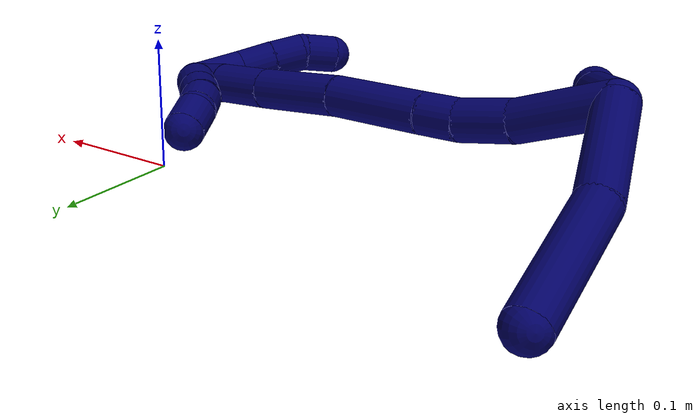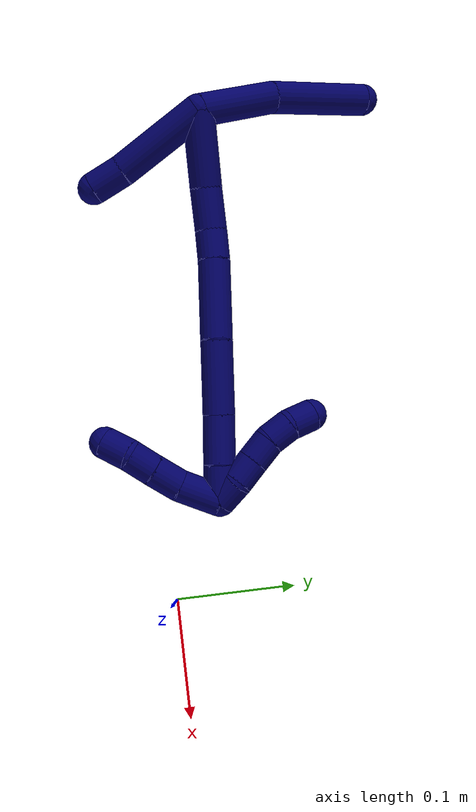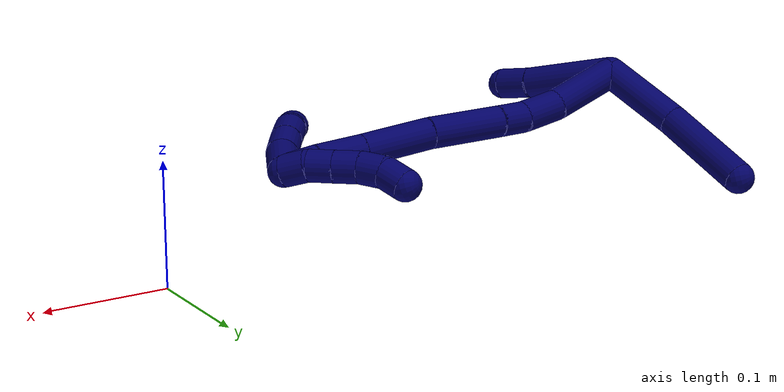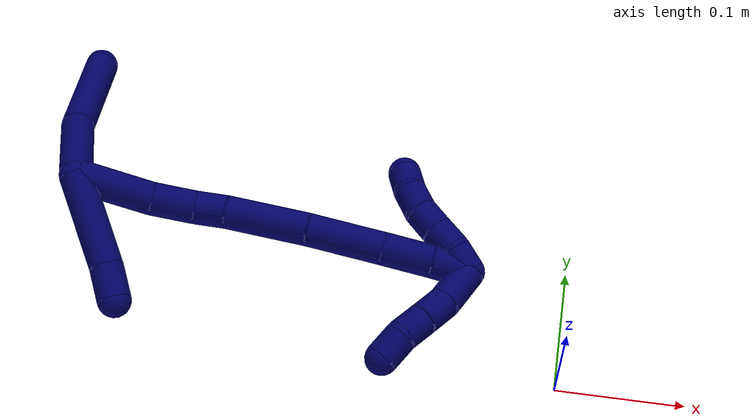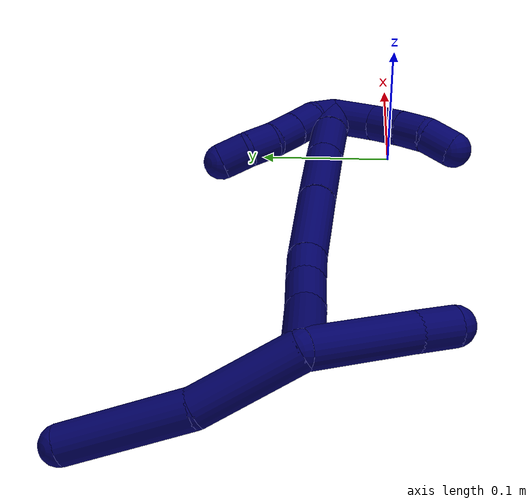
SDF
<sdf version="1.7">
 <world name="default">
  <model name="7">
   <static>0</static>
   <link name="7">
    <collision name="collision-cylinder-e_1_2_8">
     <pose>-0.003281 0.026097 0.021919 -0.872194 -0.095965 0.044749</pose>
     <geometry><cylinder><radius>0.0125</radius><length>0.068476</length></cylinder></geometry>
     <surface>
      <friction><ode><mu>1.16</mu><mu2>1.16</mu2><slip1>0</slip1><slip2>0</slip2></ode></friction>
      <contact><ode><kp>1e+06</kp><kd>1</kd><max_vel>0</max_vel><min_depth>0.001</min_depth></ode></contact>
     </surface>
    </collision>
    <visual name="visual-cylinder-e_1_2_8">
     <pose>-0.003281 0.026097 0.021919 -0.872194 -0.095965 0.044749</pose>
     <geometry><cylinder><radius>0.0125</radius><length>0.068476</length></cylinder></geometry>
     <material><ambient>0.003922 0 0.403922 1</ambient></material>
    </visual>
    <collision name="collision-cylinder-e_2_8_6">
     <pose>-0.001137 0.085142 0.067215 -0.953722 0.133477 -0.069033</pose>
     <geometry><cylinder><radius>0.0125</radius><length>0.081524</length></cylinder></geometry>
     <surface>
      <friction><ode><mu>1.16</mu><mu2>1.16</mu2><slip1>0</slip1><slip2>0</slip2></ode></friction>
      <contact><ode><kp>1e+06</kp><kd>1</kd><max_vel>0</max_vel><min_depth>0.001</min_depth></ode></contact>
     </surface>
    </collision>
    <visual name="visual-cylinder-e_2_8_6">
     <pose>-0.001137 0.085142 0.067215 -0.953722 0.133477 -0.069033</pose>
     <geometry><cylinder><radius>0.0125</radius><length>0.081524</length></cylinder></geometry>
     <material><ambient>0.003922 0 0.403922 1</ambient></material>
    </visual>
    <collision name="collision-cylinder-e_1_2_9">
     <pose>-0.004538 -0.006917 -0.03585 2.95099 -0.123662 -1.14945</pose>
     <geometry><cylinder><radius>0.0125</radius><length>0.073584</length></cylinder></geometry>
     <surface>
      <friction><ode><mu>1.16</mu><mu2>1.16</mu2><slip1>0</slip1><slip2>0</slip2></ode></friction>
      <contact><ode><kp>1e+06</kp><kd>1</kd><max_vel>0</max_vel><min_depth>0.001</min_depth></ode></contact>
     </surface>
    </collision>
    <visual name="visual-cylinder-e_1_2_9">
     <pose>-0.004538 -0.006917 -0.03585 2.95099 -0.123662 -1.14945</pose>
     <geometry><cylinder><radius>0.0125</radius><length>0.073584</length></cylinder></geometry>
     <material><ambient>0.003922 0 0.403922 1</ambient></material>
    </visual>
    <collision name="collision-cylinder-e_2_9_5">
     <pose>-0.011171 -0.017645 -0.084171 2.84505 -0.159259 -0.981316</pose>
     <geometry><cylinder><radius>0.0125</radius><length>0.026416</length></cylinder></geometry>
     <surface>
      <friction><ode><mu>1.16</mu><mu2>1.16</mu2><slip1>0</slip1><slip2>0</slip2></ode></friction>
      <contact><ode><kp>1e+06</kp><kd>1</kd><max_vel>0</max_vel><min_depth>0.001</min_depth></ode></contact>
     </surface>
    </collision>
    <visual name="visual-cylinder-e_2_9_5">
     <pose>-0.011171 -0.017645 -0.084171 2.84505 -0.159259 -0.981316</pose>
     <geometry><cylinder><radius>0.0125</radius><length>0.026416</length></cylinder></geometry>
     <material><ambient>0.003922 0 0.403922 1</ambient></material>
    </visual>
    <collision name="collision-cylinder-e_1_2_10">
     <pose>0.0136 0.015532 -0.020319 -2.48893 0.488732 -1.26997</pose>
     <geometry><cylinder><radius>0.0125</radius><length>0.057934</length></cylinder></geometry>
     <surface>
      <friction><ode><mu>1.16</mu><mu2>1.16</mu2><slip1>0</slip1><slip2>0</slip2></ode></friction>
      <contact><ode><kp>1e+06</kp><kd>1</kd><max_vel>0</max_vel><min_depth>0.001</min_depth></ode></contact>
     </surface>
    </collision>
    <visual name="visual-cylinder-e_1_2_10">
     <pose>0.0136 0.015532 -0.020319 -2.48893 0.488732 -1.26997</pose>
     <geometry><cylinder><radius>0.0125</radius><length>0.057934</length></cylinder></geometry>
     <material><ambient>0.003922 0 0.403922 1</ambient></material>
    </visual>
    <collision name="collision-cylinder-e_2_10_11">
     <pose>0.037394 0.038173 -0.051715 -2.57105 0.658979 -1.72379</pose>
     <geometry><cylinder><radius>0.0125</radius><length>0.033296</length></cylinder></geometry>
     <surface>
      <friction><ode><mu>1.16</mu><mu2>1.16</mu2><slip1>0</slip1><slip2>0</slip2></ode></friction>
      <contact><ode><kp>1e+06</kp><kd>1</kd><max_vel>0</max_vel><min_depth>0.001</min_depth></ode></contact>
     </surface>
    </collision>
    <visual name="visual-cylinder-e_2_10_11">
     <pose>0.037394 0.038173 -0.051715 -2.57105 0.658979 -1.72379</pose>
     <geometry><cylinder><radius>0.0125</radius><length>0.033296</length></cylinder></geometry>
     <material><ambient>0.003922 0 0.403922 1</ambient></material>
    </visual>
    <collision name="collision-cylinder-e_3_11_12">
     <pose>0.05583 0.048847 -0.070341 -2.70032 0.779041 -2.14146</pose>
     <geometry><cylinder><radius>0.0125</radius><length>0.023462</length></cylinder></geometry>
     <surface>
      <friction><ode><mu>1.16</mu><mu2>1.16</mu2><slip1>0</slip1><slip2>0</slip2></ode></friction>
      <contact><ode><kp>1e+06</kp><kd>1</kd><max_vel>0</max_vel><min_depth>0.001</min_depth></ode></contact>
     </surface>
    </collision>
    <visual name="visual-cylinder-e_3_11_12">
     <pose>0.05583 0.048847 -0.070341 -2.70032 0.779041 -2.14146</pose>
     <geometry><cylinder><radius>0.0125</radius><length>0.023462</length></cylinder></geometry>
     <material><ambient>0.003922 0 0.403922 1</ambient></material>
    </visual>
    <collision name="collision-cylinder-e_4_12_13">
     <pose>0.084762 0.06091 -0.099412 -2.76555 0.729574 -2.2171</pose>
     <geometry><cylinder><radius>0.0125</radius><length>0.062081</length></cylinder></geometry>
     <surface>
      <friction><ode><mu>1.16</mu><mu2>1.16</mu2><slip1>0</slip1><slip2>0</slip2></ode></friction>
      <contact><ode><kp>1e+06</kp><kd>1</kd><max_vel>0</max_vel><min_depth>0.001</min_depth></ode></contact>
     </surface>
    </collision>
    <visual name="visual-cylinder-e_4_12_13">
     <pose>0.084762 0.06091 -0.099412 -2.76555 0.729574 -2.2171</pose>
     <geometry><cylinder><radius>0.0125</radius><length>0.062081</length></cylinder></geometry>
     <material><ambient>0.003922 0 0.403922 1</ambient></material>
    </visual>
    <collision name="collision-cylinder-e_5_13_14">
     <pose>0.123192 0.078918 -0.141417 -2.70695 0.665846 -2.00501</pose>
     <geometry><cylinder><radius>0.0125</radius><length>0.057434</length></cylinder></geometry>
     <surface>
      <friction><ode><mu>1.16</mu><mu2>1.16</mu2><slip1>0</slip1><slip2>0</slip2></ode></friction>
      <contact><ode><kp>1e+06</kp><kd>1</kd><max_vel>0</max_vel><min_depth>0.001</min_depth></ode></contact>
     </surface>
    </collision>
    <visual name="visual-cylinder-e_5_13_14">
     <pose>0.123192 0.078918 -0.141417 -2.70695 0.665846 -2.00501</pose>
     <geometry><cylinder><radius>0.0125</radius><length>0.057434</length></cylinder></geometry>
     <material><ambient>0.003922 0 0.403922 1</ambient></material>
    </visual>
    <collision name="collision-cylinder-e_6_14_15">
     <pose>0.152695 0.094252 -0.175542 -2.73806 0.67051 -2.07984</pose>
     <geometry><cylinder><radius>0.0125</radius><length>0.037863</length></cylinder></geometry>
     <surface>
      <friction><ode><mu>1.16</mu><mu2>1.16</mu2><slip1>0</slip1><slip2>0</slip2></ode></friction>
      <contact><ode><kp>1e+06</kp><kd>1</kd><max_vel>0</max_vel><min_depth>0.001</min_depth></ode></contact>
     </surface>
    </collision>
    <visual name="visual-cylinder-e_6_14_15">
     <pose>0.152695 0.094252 -0.175542 -2.73806 0.67051 -2.07984</pose>
     <geometry><cylinder><radius>0.0125</radius><length>0.037863</length></cylinder></geometry>
     <material><ambient>0.003922 0 0.403922 1</ambient></material>
    </visual>
    <collision name="collision-cylinder-e_7_15_1">
     <pose>0.172538 0.105095 -0.199409 -2.68525 0.616966 -1.88209</pose>
     <geometry><cylinder><radius>0.0125</radius><length>0.027929</length></cylinder></geometry>
     <surface>
      <friction><ode><mu>1.16</mu><mu2>1.16</mu2><slip1>0</slip1><slip2>0</slip2></ode></friction>
      <contact><ode><kp>1e+06</kp><kd>1</kd><max_vel>0</max_vel><min_depth>0.001</min_depth></ode></contact>
     </surface>
    </collision>
    <visual name="visual-cylinder-e_7_15_1">
     <pose>0.172538 0.105095 -0.199409 -2.68525 0.616966 -1.88209</pose>
     <geometry><cylinder><radius>0.0125</radius><length>0.027929</length></cylinder></geometry>
     <material><ambient>0.003922 0 0.403922 1</ambient></material>
    </visual>
    <collision name="collision-cylinder-e_1_1_16">
     <pose>0.170936 0.097646 -0.214974 1.97547 -0.619892 -0.9041</pose>
     <geometry><cylinder><radius>0.0125</radius><length>0.03333</length></cylinder></geometry>
     <surface>
      <friction><ode><mu>1.16</mu><mu2>1.16</mu2><slip1>0</slip1><slip2>0</slip2></ode></friction>
      <contact><ode><kp>1e+06</kp><kd>1</kd><max_vel>0</max_vel><min_depth>0.001</min_depth></ode></contact>
     </surface>
    </collision>
    <visual name="visual-cylinder-e_1_1_16">
     <pose>0.170936 0.097646 -0.214974 1.97547 -0.619892 -0.9041</pose>
     <geometry><cylinder><radius>0.0125</radius><length>0.03333</length></cylinder></geometry>
     <material><ambient>0.003922 0 0.403922 1</ambient></material>
    </visual>
    <collision name="collision-cylinder-e_2_16_17">
     <pose>0.154171 0.075889 -0.221853 1.73503 -0.645031 -0.750865</pose>
     <geometry><cylinder><radius>0.0125</radius><length>0.023564</length></cylinder></geometry>
     <surface>
      <friction><ode><mu>1.16</mu><mu2>1.16</mu2><slip1>0</slip1><slip2>0</slip2></ode></friction>
      <contact><ode><kp>1e+06</kp><kd>1</kd><max_vel>0</max_vel><min_depth>0.001</min_depth></ode></contact>
     </surface>
    </collision>
    <visual name="visual-cylinder-e_2_16_17">
     <pose>0.154171 0.075889 -0.221853 1.73503 -0.645031 -0.750865</pose>
     <geometry><cylinder><radius>0.0125</radius><length>0.023564</length></cylinder></geometry>
     <material><ambient>0.003922 0 0.403922 1</ambient></material>
    </visual>
    <collision name="collision-cylinder-e_3_17_18">
     <pose>0.140294 0.058521 -0.224664 1.72687 -0.693117 -0.799333</pose>
     <geometry><cylinder><radius>0.0125</radius><length>0.021267</length></cylinder></geometry>
     <surface>
      <friction><ode><mu>1.16</mu><mu2>1.16</mu2><slip1>0</slip1><slip2>0</slip2></ode></friction>
      <contact><ode><kp>1e+06</kp><kd>1</kd><max_vel>0</max_vel><min_depth>0.001</min_depth></ode></contact>
     </surface>
    </collision>
    <visual name="visual-cylinder-e_3_17_18">
     <pose>0.140294 0.058521 -0.224664 1.72687 -0.693117 -0.799333</pose>
     <geometry><cylinder><radius>0.0125</radius><length>0.021267</length></cylinder></geometry>
     <material><ambient>0.003922 0 0.403922 1</ambient></material>
    </visual>
    <collision name="collision-cylinder-e_4_18_4">
     <pose>0.124699 0.044835 -0.229154 2.09193 -0.937305 -1.43698</pose>
     <geometry><cylinder><radius>0.0125</radius><length>0.02184</length></cylinder></geometry>
     <surface>
      <friction><ode><mu>1.16</mu><mu2>1.16</mu2><slip1>0</slip1><slip2>0</slip2></ode></friction>
      <contact><ode><kp>1e+06</kp><kd>1</kd><max_vel>0</max_vel><min_depth>0.001</min_depth></ode></contact>
     </surface>
    </collision>
    <visual name="visual-cylinder-e_4_18_4">
     <pose>0.124699 0.044835 -0.229154 2.09193 -0.937305 -1.43698</pose>
     <geometry><cylinder><radius>0.0125</radius><length>0.02184</length></cylinder></geometry>
     <material><ambient>0.003922 0 0.403922 1</ambient></material>
    </visual>
    <collision name="collision-cylinder-e_1_1_19">
     <pose>0.180486 0.110249 -0.199635 -0.013472 -0.013185 8.9e-05</pose>
     <geometry><cylinder><radius>0.0125</radius><length>0.02</length></cylinder></geometry>
     <surface>
      <friction><ode><mu>1.16</mu><mu2>1.16</mu2><slip1>0</slip1><slip2>0</slip2></ode></friction>
      <contact><ode><kp>1e+06</kp><kd>1</kd><max_vel>0</max_vel><min_depth>0.001</min_depth></ode></contact>
     </surface>
    </collision>
    <visual name="visual-cylinder-e_1_1_19">
     <pose>0.180486 0.110249 -0.199635 -0.013472 -0.013185 8.9e-05</pose>
     <geometry><cylinder><radius>0.0125</radius><length>0.02</length></cylinder></geometry>
     <material><ambient>0.003922 0 0.403922 1</ambient></material>
    </visual>
    <collision name="collision-cylinder-e_2_19_20">
     <pose>0.177916 0.112188 -0.180108 -0.187093 -0.246336 0.023228</pose>
     <geometry><cylinder><radius>0.0125</radius><length>0.02</length></cylinder></geometry>
     <surface>
      <friction><ode><mu>1.16</mu><mu2>1.16</mu2><slip1>0</slip1><slip2>0</slip2></ode></friction>
      <contact><ode><kp>1e+06</kp><kd>1</kd><max_vel>0</max_vel><min_depth>0.001</min_depth></ode></contact>
     </surface>
    </collision>
    <visual name="visual-cylinder-e_2_19_20">
     <pose>0.177916 0.112188 -0.180108 -0.187093 -0.246336 0.023228</pose>
     <geometry><cylinder><radius>0.0125</radius><length>0.02</length></cylinder></geometry>
     <material><ambient>0.003922 0 0.403922 1</ambient></material>
    </visual>
    <collision name="collision-cylinder-e_3_20_21">
     <pose>0.17324 0.11578 -0.160998 -0.184528 -0.225605 0.020963</pose>
     <geometry><cylinder><radius>0.0125</radius><length>0.02</length></cylinder></geometry>
     <surface>
      <friction><ode><mu>1.16</mu><mu2>1.16</mu2><slip1>0</slip1><slip2>0</slip2></ode></friction>
      <contact><ode><kp>1e+06</kp><kd>1</kd><max_vel>0</max_vel><min_depth>0.001</min_depth></ode></contact>
     </surface>
    </collision>
    <visual name="visual-cylinder-e_3_20_21">
     <pose>0.17324 0.11578 -0.160998 -0.184528 -0.225605 0.020963</pose>
     <geometry><cylinder><radius>0.0125</radius><length>0.02</length></cylinder></geometry>
     <material><ambient>0.003922 0 0.403922 1</ambient></material>
    </visual>
    <collision name="collision-cylinder-e_4_21_22">
     <pose>0.170193 0.121484 -0.14225 -0.403665 -0.081101 0.016603</pose>
     <geometry><cylinder><radius>0.0125</radius><length>0.02</length></cylinder></geometry>
     <surface>
      <friction><ode><mu>1.16</mu><mu2>1.16</mu2><slip1>0</slip1><slip2>0</slip2></ode></friction>
      <contact><ode><kp>1e+06</kp><kd>1</kd><max_vel>0</max_vel><min_depth>0.001</min_depth></ode></contact>
     </surface>
    </collision>
    <visual name="visual-cylinder-e_4_21_22">
     <pose>0.170193 0.121484 -0.14225 -0.403665 -0.081101 0.016603</pose>
     <geometry><cylinder><radius>0.0125</radius><length>0.02</length></cylinder></geometry>
     <material><ambient>0.003922 0 0.403922 1</ambient></material>
    </visual>
    <collision name="collision-cylinder-e_5_22_3">
     <pose>0.168773 0.132061 -0.125652 -0.730829 -0.060999 0.023344</pose>
     <geometry><cylinder><radius>0.0125</radius><length>0.02</length></cylinder></geometry>
     <surface>
      <friction><ode><mu>1.16</mu><mu2>1.16</mu2><slip1>0</slip1><slip2>0</slip2></ode></friction>
      <contact><ode><kp>1e+06</kp><kd>1</kd><max_vel>0</max_vel><min_depth>0.001</min_depth></ode></contact>
     </surface>
    </collision>
    <visual name="visual-cylinder-e_5_22_3">
     <pose>0.168773 0.132061 -0.125652 -0.730829 -0.060999 0.023344</pose>
     <geometry><cylinder><radius>0.0125</radius><length>0.02</length></cylinder></geometry>
     <material><ambient>0.003922 0 0.403922 1</ambient></material>
    </visual>
    <collision name="collision-sphere-3">
     <pose>0.168164 0.138723 -0.11822 0 -0 0</pose>
     <geometry><sphere><radius>0.0125</radius></sphere></geometry>
     <surface>
      <friction><ode><mu>1.16</mu><mu2>1.16</mu2><slip1>0</slip1><slip2>0</slip2></ode></friction>
      <contact><ode><kp>1e+06</kp><kd>1</kd><max_vel>0</max_vel><min_depth>0.001</min_depth></ode></contact>
     </surface>
    </collision>
    <visual name="visual-sphere-3">
     <pose>0.168164 0.138723 -0.11822 0 -0 0</pose>
     <geometry><sphere><radius>0.0125</radius></sphere></geometry>
     <material><ambient>0.003922 0 0.403922 1</ambient></material>
    </visual>
    <collision name="collision-sphere-22">
     <pose>0.169383 0.125399 -0.133084 0 -0 0</pose>
     <geometry><sphere><radius>0.0125</radius></sphere></geometry>
     <surface>
      <friction><ode><mu>1.16</mu><mu2>1.16</mu2><slip1>0</slip1><slip2>0</slip2></ode></friction>
      <contact><ode><kp>1e+06</kp><kd>1</kd><max_vel>0</max_vel><min_depth>0.001</min_depth></ode></contact>
     </surface>
    </collision>
    <visual name="visual-sphere-22">
     <pose>0.169383 0.125399 -0.133084 0 -0 0</pose>
     <geometry><sphere><radius>0.0125</radius></sphere></geometry>
     <material><ambient>0.003922 0 0.403922 1</ambient></material>
    </visual>
    <collision name="collision-sphere-21">
     <pose>0.171003 0.117569 -0.151417 0 -0 0</pose>
     <geometry><sphere><radius>0.0125</radius></sphere></geometry>
     <surface>
      <friction><ode><mu>1.16</mu><mu2>1.16</mu2><slip1>0</slip1><slip2>0</slip2></ode></friction>
      <contact><ode><kp>1e+06</kp><kd>1</kd><max_vel>0</max_vel><min_depth>0.001</min_depth></ode></contact>
     </surface>
    </collision>
    <visual name="visual-sphere-21">
     <pose>0.171003 0.117569 -0.151417 0 -0 0</pose>
     <geometry><sphere><radius>0.0125</radius></sphere></geometry>
     <material><ambient>0.003922 0 0.403922 1</ambient></material>
    </visual>
    <collision name="collision-sphere-20">
     <pose>0.175477 0.113992 -0.170579 0 -0 0</pose>
     <geometry><sphere><radius>0.0125</radius></sphere></geometry>
     <surface>
      <friction><ode><mu>1.16</mu><mu2>1.16</mu2><slip1>0</slip1><slip2>0</slip2></ode></friction>
      <contact><ode><kp>1e+06</kp><kd>1</kd><max_vel>0</max_vel><min_depth>0.001</min_depth></ode></contact>
     </surface>
    </collision>
    <visual name="visual-sphere-20">
     <pose>0.175477 0.113992 -0.170579 0 -0 0</pose>
     <geometry><sphere><radius>0.0125</radius></sphere></geometry>
     <material><ambient>0.003922 0 0.403922 1</ambient></material>
    </visual>
    <collision name="collision-sphere-19">
     <pose>0.180354 0.110384 -0.189637 0 -0 0</pose>
     <geometry><sphere><radius>0.0125</radius></sphere></geometry>
     <surface>
      <friction><ode><mu>1.16</mu><mu2>1.16</mu2><slip1>0</slip1><slip2>0</slip2></ode></friction>
      <contact><ode><kp>1e+06</kp><kd>1</kd><max_vel>0</max_vel><min_depth>0.001</min_depth></ode></contact>
     </surface>
    </collision>
    <visual name="visual-sphere-19">
     <pose>0.180354 0.110384 -0.189637 0 -0 0</pose>
     <geometry><sphere><radius>0.0125</radius></sphere></geometry>
     <material><ambient>0.003922 0 0.403922 1</ambient></material>
    </visual>
    <collision name="collision-sphere-10">
     <pose>0.0272 0.031065 -0.040638 0 -0 0</pose>
     <geometry><sphere><radius>0.0125</radius></sphere></geometry>
     <surface>
      <friction><ode><mu>1.16</mu><mu2>1.16</mu2><slip1>0</slip1><slip2>0</slip2></ode></friction>
      <contact><ode><kp>1e+06</kp><kd>1</kd><max_vel>0</max_vel><min_depth>0.001</min_depth></ode></contact>
     </surface>
    </collision>
    <visual name="visual-sphere-10">
     <pose>0.0272 0.031065 -0.040638 0 -0 0</pose>
     <geometry><sphere><radius>0.0125</radius></sphere></geometry>
     <material><ambient>0.003922 0 0.403922 1</ambient></material>
    </visual>
    <collision name="collision-sphere-5">
     <pose>-0.013266 -0.021456 -0.096643 0 -0 0</pose>
     <geometry><sphere><radius>0.0125</radius></sphere></geometry>
     <surface>
      <friction><ode><mu>1.16</mu><mu2>1.16</mu2><slip1>0</slip1><slip2>0</slip2></ode></friction>
      <contact><ode><kp>1e+06</kp><kd>1</kd><max_vel>0</max_vel><min_depth>0.001</min_depth></ode></contact>
     </surface>
    </collision>
    <visual name="visual-sphere-5">
     <pose>-0.013266 -0.021456 -0.096643 0 -0 0</pose>
     <geometry><sphere><radius>0.0125</radius></sphere></geometry>
     <material><ambient>0.003922 0 0.403922 1</ambient></material>
    </visual>
    <collision name="collision-sphere-6">
     <pose>0.004288 0.118091 0.090592 0 -0 0</pose>
     <geometry><sphere><radius>0.0125</radius></sphere></geometry>
     <surface>
      <friction><ode><mu>1.16</mu><mu2>1.16</mu2><slip1>0</slip1><slip2>0</slip2></ode></friction>
      <contact><ode><kp>1e+06</kp><kd>1</kd><max_vel>0</max_vel><min_depth>0.001</min_depth></ode></contact>
     </surface>
    </collision>
    <visual name="visual-sphere-6">
     <pose>0.004288 0.118091 0.090592 0 -0 0</pose>
     <geometry><sphere><radius>0.0125</radius></sphere></geometry>
     <material><ambient>0.003922 0 0.403922 1</ambient></material>
    </visual>
    <collision name="collision-sphere-9">
     <pose>-0.009076 -0.013834 -0.0717 0 -0 0</pose>
     <geometry><sphere><radius>0.0125</radius></sphere></geometry>
     <surface>
      <friction><ode><mu>1.16</mu><mu2>1.16</mu2><slip1>0</slip1><slip2>0</slip2></ode></friction>
      <contact><ode><kp>1e+06</kp><kd>1</kd><max_vel>0</max_vel><min_depth>0.001</min_depth></ode></contact>
     </surface>
    </collision>
    <visual name="visual-sphere-9">
     <pose>-0.009076 -0.013834 -0.0717 0 -0 0</pose>
     <geometry><sphere><radius>0.0125</radius></sphere></geometry>
     <material><ambient>0.003922 0 0.403922 1</ambient></material>
    </visual>
    <collision name="collision-sphere-2">
     <geometry><sphere><radius>0.0125</radius></sphere></geometry>
     <surface>
      <friction><ode><mu>1.16</mu><mu2>1.16</mu2><slip1>0</slip1><slip2>0</slip2></ode></friction>
      <contact><ode><kp>1e+06</kp><kd>1</kd><max_vel>0</max_vel><min_depth>0.001</min_depth></ode></contact>
     </surface>
    </collision>
    <visual name="visual-sphere-2">
     <geometry><sphere><radius>0.0125</radius></sphere></geometry>
     <material><ambient>0.003922 0 0.403922 1</ambient></material>
    </visual>
    <collision name="collision-sphere-8">
     <pose>-0.006561 0.052193 0.043837 0 -0 0</pose>
     <geometry><sphere><radius>0.0125</radius></sphere></geometry>
     <surface>
      <friction><ode><mu>1.16</mu><mu2>1.16</mu2><slip1>0</slip1><slip2>0</slip2></ode></friction>
      <contact><ode><kp>1e+06</kp><kd>1</kd><max_vel>0</max_vel><min_depth>0.001</min_depth></ode></contact>
     </surface>
    </collision>
    <visual name="visual-sphere-8">
     <pose>-0.006561 0.052193 0.043837 0 -0 0</pose>
     <geometry><sphere><radius>0.0125</radius></sphere></geometry>
     <material><ambient>0.003922 0 0.403922 1</ambient></material>
    </visual>
    <collision name="collision-sphere-11">
     <pose>0.047588 0.045282 -0.062793 0 -0 0</pose>
     <geometry><sphere><radius>0.0125</radius></sphere></geometry>
     <surface>
      <friction><ode><mu>1.16</mu><mu2>1.16</mu2><slip1>0</slip1><slip2>0</slip2></ode></friction>
      <contact><ode><kp>1e+06</kp><kd>1</kd><max_vel>0</max_vel><min_depth>0.001</min_depth></ode></contact>
     </surface>
    </collision>
    <visual name="visual-sphere-11">
     <pose>0.047588 0.045282 -0.062793 0 -0 0</pose>
     <geometry><sphere><radius>0.0125</radius></sphere></geometry>
     <material><ambient>0.003922 0 0.403922 1</ambient></material>
    </visual>
    <collision name="collision-sphere-12">
     <pose>0.064072 0.052413 -0.077889 0 -0 0</pose>
     <geometry><sphere><radius>0.0125</radius></sphere></geometry>
     <surface>
      <friction><ode><mu>1.16</mu><mu2>1.16</mu2><slip1>0</slip1><slip2>0</slip2></ode></friction>
      <contact><ode><kp>1e+06</kp><kd>1</kd><max_vel>0</max_vel><min_depth>0.001</min_depth></ode></contact>
     </surface>
    </collision>
    <visual name="visual-sphere-12">
     <pose>0.064072 0.052413 -0.077889 0 -0 0</pose>
     <geometry><sphere><radius>0.0125</radius></sphere></geometry>
     <material><ambient>0.003922 0 0.403922 1</ambient></material>
    </visual>
    <collision name="collision-sphere-13">
     <pose>0.105453 0.069408 -0.120934 0 -0 0</pose>
     <geometry><sphere><radius>0.0125</radius></sphere></geometry>
     <surface>
      <friction><ode><mu>1.16</mu><mu2>1.16</mu2><slip1>0</slip1><slip2>0</slip2></ode></friction>
      <contact><ode><kp>1e+06</kp><kd>1</kd><max_vel>0</max_vel><min_depth>0.001</min_depth></ode></contact>
     </surface>
    </collision>
    <visual name="visual-sphere-13">
     <pose>0.105453 0.069408 -0.120934 0 -0 0</pose>
     <geometry><sphere><radius>0.0125</radius></sphere></geometry>
     <material><ambient>0.003922 0 0.403922 1</ambient></material>
    </visual>
    <collision name="collision-sphere-14">
     <pose>0.140931 0.088427 -0.161901 0 -0 0</pose>
     <geometry><sphere><radius>0.0125</radius></sphere></geometry>
     <surface>
      <friction><ode><mu>1.16</mu><mu2>1.16</mu2><slip1>0</slip1><slip2>0</slip2></ode></friction>
      <contact><ode><kp>1e+06</kp><kd>1</kd><max_vel>0</max_vel><min_depth>0.001</min_depth></ode></contact>
     </surface>
    </collision>
    <visual name="visual-sphere-14">
     <pose>0.140931 0.088427 -0.161901 0 -0 0</pose>
     <geometry><sphere><radius>0.0125</radius></sphere></geometry>
     <material><ambient>0.003922 0 0.403922 1</ambient></material>
    </visual>
    <collision name="collision-sphere-15">
     <pose>0.164459 0.100076 -0.189184 0 -0 0</pose>
     <geometry><sphere><radius>0.0125</radius></sphere></geometry>
     <surface>
      <friction><ode><mu>1.16</mu><mu2>1.16</mu2><slip1>0</slip1><slip2>0</slip2></ode></friction>
      <contact><ode><kp>1e+06</kp><kd>1</kd><max_vel>0</max_vel><min_depth>0.001</min_depth></ode></contact>
     </surface>
    </collision>
    <visual name="visual-sphere-15">
     <pose>0.164459 0.100076 -0.189184 0 -0 0</pose>
     <geometry><sphere><radius>0.0125</radius></sphere></geometry>
     <material><ambient>0.003922 0 0.403922 1</ambient></material>
    </visual>
    <collision name="collision-sphere-1">
     <pose>0.180618 0.110115 -0.209633 0 -0 0</pose>
     <geometry><sphere><radius>0.0125</radius></sphere></geometry>
     <surface>
      <friction><ode><mu>1.16</mu><mu2>1.16</mu2><slip1>0</slip1><slip2>0</slip2></ode></friction>
      <contact><ode><kp>1e+06</kp><kd>1</kd><max_vel>0</max_vel><min_depth>0.001</min_depth></ode></contact>
     </surface>
    </collision>
    <visual name="visual-sphere-1">
     <pose>0.180618 0.110115 -0.209633 0 -0 0</pose>
     <geometry><sphere><radius>0.0125</radius></sphere></geometry>
     <material><ambient>0.003922 0 0.403922 1</ambient></material>
    </visual>
    <collision name="collision-sphere-18">
     <pose>0.1335 0.050441 -0.225936 0 -0 0</pose>
     <geometry><sphere><radius>0.0125</radius></sphere></geometry>
     <surface>
      <friction><ode><mu>1.16</mu><mu2>1.16</mu2><slip1>0</slip1><slip2>0</slip2></ode></friction>
      <contact><ode><kp>1e+06</kp><kd>1</kd><max_vel>0</max_vel><min_depth>0.001</min_depth></ode></contact>
     </surface>
    </collision>
    <visual name="visual-sphere-18">
     <pose>0.1335 0.050441 -0.225936 0 -0 0</pose>
     <geometry><sphere><radius>0.0125</radius></sphere></geometry>
     <material><ambient>0.003922 0 0.403922 1</ambient></material>
    </visual>
    <collision name="collision-sphere-16">
     <pose>0.161255 0.085177 -0.220314 0 -0 0</pose>
     <geometry><sphere><radius>0.0125</radius></sphere></geometry>
     <surface>
      <friction><ode><mu>1.16</mu><mu2>1.16</mu2><slip1>0</slip1><slip2>0</slip2></ode></friction>
      <contact><ode><kp>1e+06</kp><kd>1</kd><max_vel>0</max_vel><min_depth>0.001</min_depth></ode></contact>
     </surface>
    </collision>
    <visual name="visual-sphere-16">
     <pose>0.161255 0.085177 -0.220314 0 -0 0</pose>
     <geometry><sphere><radius>0.0125</radius></sphere></geometry>
     <material><ambient>0.003922 0 0.403922 1</ambient></material>
    </visual>
    <collision name="collision-sphere-17">
     <pose>0.147088 0.066601 -0.223393 0 -0 0</pose>
     <geometry><sphere><radius>0.0125</radius></sphere></geometry>
     <surface>
      <friction><ode><mu>1.16</mu><mu2>1.16</mu2><slip1>0</slip1><slip2>0</slip2></ode></friction>
      <contact><ode><kp>1e+06</kp><kd>1</kd><max_vel>0</max_vel><min_depth>0.001</min_depth></ode></contact>
     </surface>
    </collision>
    <visual name="visual-sphere-17">
     <pose>0.147088 0.066601 -0.223393 0 -0 0</pose>
     <geometry><sphere><radius>0.0125</radius></sphere></geometry>
     <material><ambient>0.003922 0 0.403922 1</ambient></material>
    </visual>
    <collision name="collision-sphere-4">
     <pose>0.115898 0.039229 -0.232372 0 -0 0</pose>
     <geometry><sphere><radius>0.0125</radius></sphere></geometry>
     <surface>
      <friction><ode><mu>1.16</mu><mu2>1.16</mu2><slip1>0</slip1><slip2>0</slip2></ode></friction>
      <contact><ode><kp>1e+06</kp><kd>1</kd><max_vel>0</max_vel><min_depth>0.001</min_depth></ode></contact>
     </surface>
    </collision>
    <visual name="visual-sphere-4">
     <pose>0.115898 0.039229 -0.232372 0 -0 0</pose>
     <geometry><sphere><radius>0.0125</radius></sphere></geometry>
     <material><ambient>0.003922 0 0.403922 1</ambient></material>
    </visual>
    <inertial>
     <pose>0.077045 0.059986 -0.089718 0 -0 0</pose>
     <mass>0.75</mass>
     <inertia><ixx>1e-06</ixx><ixy>0</ixy><ixz>0</ixz><iyy>-3e-06</iyy><iyz>0</iyz><izz>-0.000124</izz></inertia>
    </inertial>
   </link>
   <pose>-0.370542 0.064201 0.135428 -1.19011 -0.612412 0.487941</pose>
  </model>
 </world>
</sdf>
